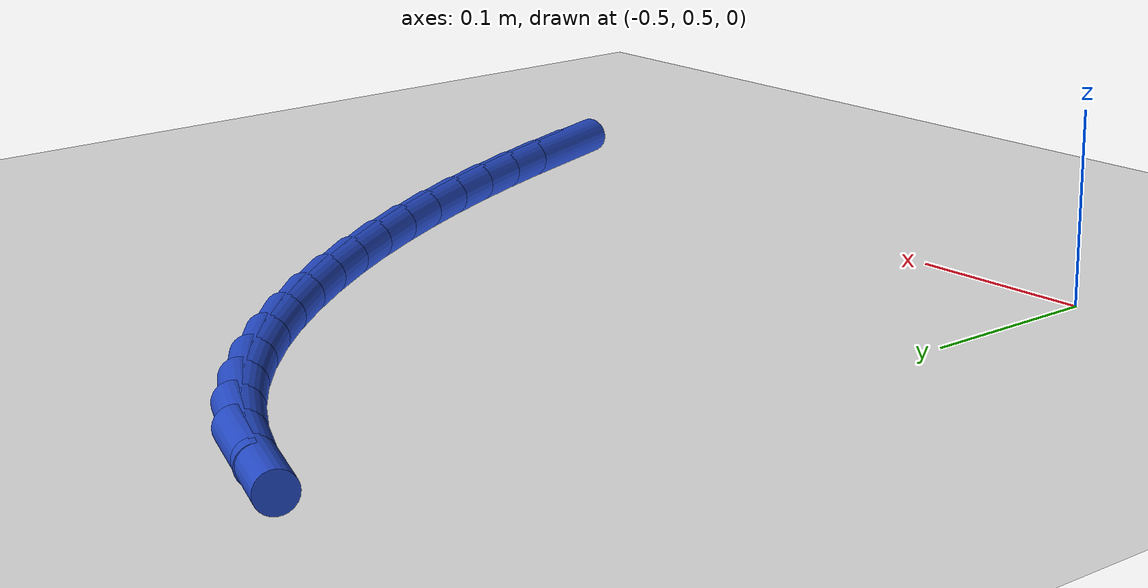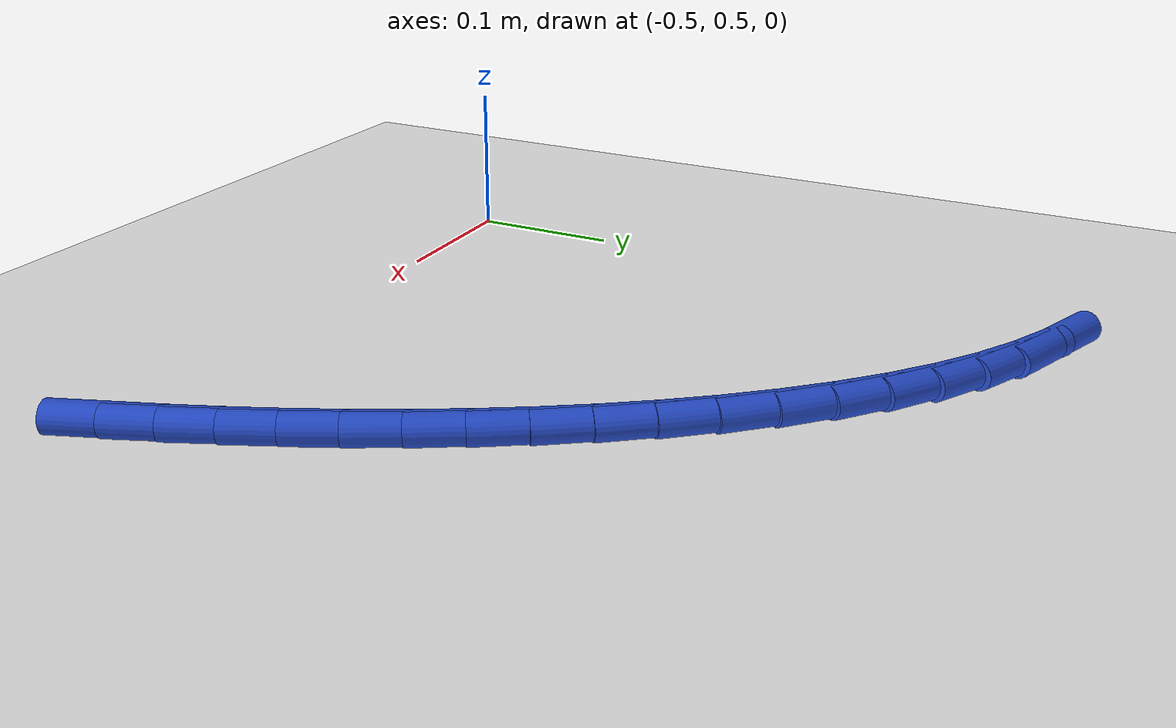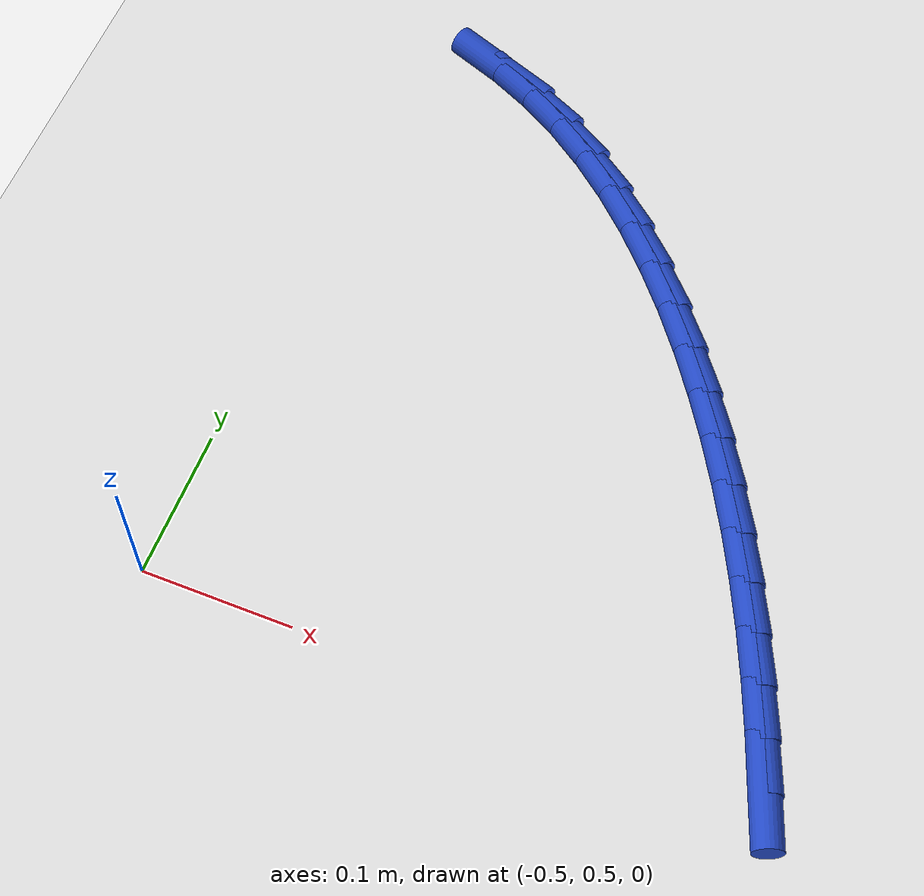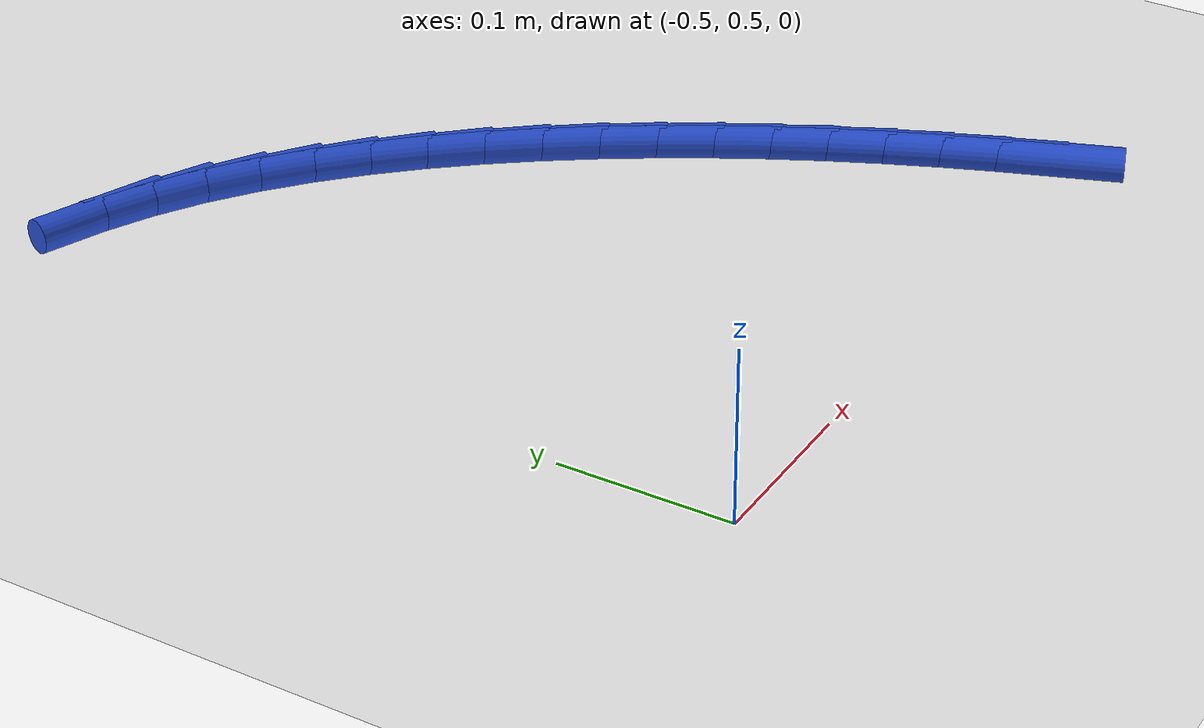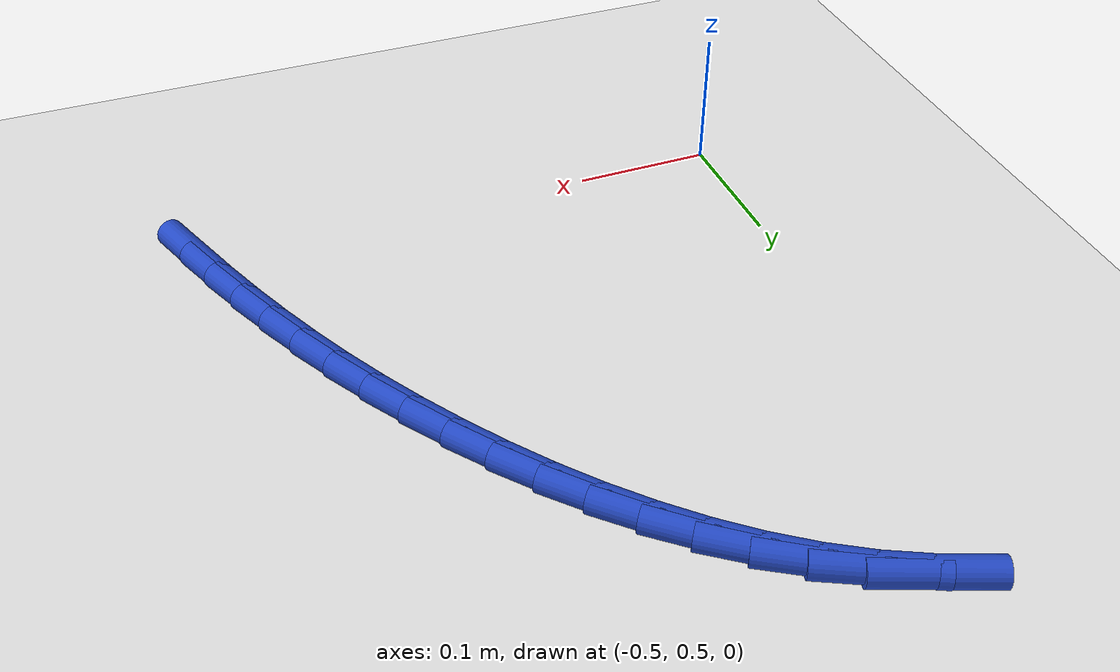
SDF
<sdf version="1.6">
 <world name="default">
  <model name="ground_plane">
   <static>1</static>
   <link name="link">
    <collision name="collision">
     <geometry><plane><normal>0 0 1</normal><size>100 100</size></plane></geometry>
     <surface><friction><ode><mu>100</mu><mu2>50</mu2></ode></friction></surface>
    </collision>
    <visual name="visual">
     <cast_shadows>0</cast_shadows>
     <geometry><plane><normal>0 0 1</normal><size>100 100</size></plane></geometry>
     <material>
      <script><uri>file://media/materials/scripts/gazebo.material</uri><name>Gazebo/WhiteGlow</name></script>
     </material>
    </visual>
   </link>
  </model>
  <model name="line">
   <link name="link_16">
    <pose>-0.1055449806826154 0.5065461900259327 0.01 0 1.57 -1.215942558549698</pose>
    <collision name="collision">
     <geometry><cylinder><radius>0.01</radius><length>0.08</length></cylinder></geometry>
    </collision>
    <visual name="visual">
     <material>
      <script><name>Gazebo/Blue</name><uri>file://media/materials/scripts/gazebo.material</uri></script>
     </material>
     <geometry><cylinder><radius>0.01</radius><length>0.08</length></cylinder></geometry>
    </visual>
   </link>
   <link name="link_17">
    <pose>-0.11680208915802125 0.5369265660163164 0.01 0 1.57 -1.1909960476434311</pose>
    <collision name="collision">
     <geometry><cylinder><radius>0.01</radius><length>0.08</length></cylinder></geometry>
    </collision>
    <visual name="visual">
     <material>
      <script><name>Gazebo/Blue</name><uri>file://media/materials/scripts/gazebo.material</uri></script>
     </material>
     <geometry><cylinder><radius>0.01</radius><length>0.08</length></cylinder></geometry>
    </visual>
   </link>
   <link name="link_18">
    <pose>-0.12882417115725237 0.5670434234212315 0.01 0 1.57 -1.1640641433164582</pose>
    <collision name="collision">
     <geometry><cylinder><radius>0.01</radius><length>0.08</length></cylinder></geometry>
    </collision>
    <visual name="visual">
     <material>
      <script><name>Gazebo/Blue</name><uri>file://media/materials/scripts/gazebo.material</uri></script>
     </material>
     <geometry><cylinder><radius>0.01</radius><length>0.08</length></cylinder></geometry>
    </visual>
   </link>
   <link name="link_19">
    <pose>-0.14167364566664284 0.5968737829783134 0.01 0 1.57 -1.135202374761682</pose>
    <collision name="collision">
     <geometry><cylinder><radius>0.01</radius><length>0.08</length></cylinder></geometry>
    </collision>
    <visual name="visual">
     <material>
      <script><name>Gazebo/Blue</name><uri>file://media/materials/scripts/gazebo.material</uri></script>
     </material>
     <geometry><cylinder><radius>0.01</radius><length>0.08</length></cylinder></geometry>
    </visual>
   </link>
   <link name="link_20">
    <pose>-0.15541293167252676 0.6263946654251986 0.01 0 1.57 -1.1044853704854731</pose>
    <collision name="collision">
     <geometry><cylinder><radius>0.01</radius><length>0.08</length></cylinder></geometry>
    </collision>
    <visual name="visual">
     <material>
      <script><name>Gazebo/Blue</name><uri>file://media/materials/scripts/gazebo.material</uri></script>
     </material>
     <geometry><cylinder><radius>0.01</radius><length>0.08</length></cylinder></geometry>
    </visual>
   </link>
   <link name="link_21">
    <pose>-0.17010444816123835 0.6555830914995234 0.01 0 1.57 -1.0720089564443716</pose>
    <collision name="collision">
     <geometry><cylinder><radius>0.01</radius><length>0.08</length></cylinder></geometry>
    </collision>
    <visual name="visual">
     <material>
      <script><name>Gazebo/Blue</name><uri>file://media/materials/scripts/gazebo.material</uri></script>
     </material>
     <geometry><cylinder><radius>0.01</radius><length>0.08</length></cylinder></geometry>
    </visual>
   </link>
   <link name="link_22">
    <pose>-0.18581061411911173 0.6844160819389238 0.01 0 1.57 -1.0378916635860012</pose>
    <collision name="collision">
     <geometry><cylinder><radius>0.01</radius><length>0.08</length></cylinder></geometry>
    </collision>
    <visual name="visual">
     <material>
      <script><name>Gazebo/Blue</name><uri>file://media/materials/scripts/gazebo.material</uri></script>
     </material>
     <geometry><cylinder><radius>0.01</radius><length>0.08</length></cylinder></geometry>
    </visual>
   </link>
   <link name="link_23">
    <pose>-0.2025938485324811 0.7128706574810362 0.01 0 1.57 -1.00223773739815</pose>
    <collision name="collision">
     <geometry><cylinder><radius>0.01</radius><length>0.08</length></cylinder></geometry>
    </collision>
    <visual name="visual">
     <material>
      <script><name>Gazebo/Blue</name><uri>file://media/materials/scripts/gazebo.material</uri></script>
     </material>
     <geometry><cylinder><radius>0.01</radius><length>0.08</length></cylinder></geometry>
    </visual>
   </link>
   <link name="link_24">
    <pose>-0.22051532847705393 0.7409195649722435 0.01 0 1.57 -0.9640788097628212</pose>
    <collision name="collision">
     <geometry><cylinder><radius>0.01</radius><length>0.08</length></cylinder></geometry>
    </collision>
    <visual name="visual">
     <material>
      <script><name>Gazebo/Blue</name><uri>file://media/materials/scripts/gazebo.material</uri></script>
     </material>
     <geometry><cylinder><radius>0.01</radius><length>0.08</length></cylinder></geometry>
    </visual>
   </link>
   <link name="link_25">
    <pose>-0.2396032382094972 0.7684220103022011 0.01 0 1.57 -0.9218625431205067</pose>
    <collision name="collision">
     <geometry><cylinder><radius>0.01</radius><length>0.08</length></cylinder></geometry>
    </collision>
    <visual name="visual">
     <material>
      <script><name>Gazebo/Blue</name><uri>file://media/materials/scripts/gazebo.material</uri></script>
     </material>
     <geometry><cylinder><radius>0.01</radius><length>0.08</length></cylinder></geometry>
    </visual>
   </link>
   <link name="link_26">
    <pose>-0.25985010328278485 0.7951144840712775 0.01 0 1.57 -0.874849518328969</pose>
    <collision name="collision">
     <geometry><cylinder><radius>0.01</radius><length>0.08</length></cylinder></geometry>
    </collision>
    <visual name="visual">
     <material>
      <script><name>Gazebo/Blue</name><uri>file://media/materials/scripts/gazebo.material</uri></script>
     </material>
     <geometry><cylinder><radius>0.01</radius><length>0.08</length></cylinder></geometry>
    </visual>
   </link>
   <link name="link_27">
    <pose>-0.281246673152969 0.8207273646484641 0.01 0 1.57 -0.8222749461910553</pose>
    <collision name="collision">
     <geometry><cylinder><radius>0.01</radius><length>0.08</length></cylinder></geometry>
    </collision>
    <visual name="visual">
     <material>
      <script><name>Gazebo/Blue</name><uri>file://media/materials/scripts/gazebo.material</uri></script>
     </material>
     <geometry><cylinder><radius>0.01</radius><length>0.08</length></cylinder></geometry>
    </visual>
   </link>
   <link name="link_28">
    <pose>-0.30378369727610166 0.8449910304027523 0.01 0 1.57 -0.7633043507606859</pose>
    <collision name="collision">
     <geometry><cylinder><radius>0.01</radius><length>0.08</length></cylinder></geometry>
    </collision>
    <visual name="visual">
     <material>
      <script><name>Gazebo/Blue</name><uri>file://media/materials/scripts/gazebo.material</uri></script>
     </material>
     <geometry><cylinder><radius>0.01</radius><length>0.08</length></cylinder></geometry>
    </visual>
   </link>
   <link name="link_29">
    <pose>-0.32745192510823484 0.867635859703133 0.01 0 1.57 -0.6970640896180392</pose>
    <collision name="collision">
     <geometry><cylinder><radius>0.01</radius><length>0.08</length></cylinder></geometry>
    </collision>
    <visual name="visual">
     <material>
      <script><name>Gazebo/Blue</name><uri>file://media/materials/scripts/gazebo.material</uri></script>
     </material>
     <geometry><cylinder><radius>0.01</radius><length>0.08</length></cylinder></geometry>
    </visual>
   </link>
   <link name="link_30">
    <pose>-0.3522421061054208 0.8883922309185982 0.01 0 1.57 -0.6227051639275418</pose>
    <collision name="collision">
     <geometry><cylinder><radius>0.01</radius><length>0.08</length></cylinder></geometry>
    </collision>
    <visual name="visual">
     <material>
      <script><name>Gazebo/Blue</name><uri>file://media/materials/scripts/gazebo.material</uri></script>
     </material>
     <geometry><cylinder><radius>0.01</radius><length>0.08</length></cylinder></geometry>
    </visual>
   </link>
   <link name="link_31">
    <pose>-0.3781449897237109 0.906990522418138 0.01 0 1.57 -0.5395147756456349</pose>
    <collision name="collision">
     <geometry><cylinder><radius>0.01</radius><length>0.08</length></cylinder></geometry>
    </collision>
    <visual name="visual">
     <material>
      <script><name>Gazebo/Blue</name><uri>file://media/materials/scripts/gazebo.material</uri></script>
     </material>
     <geometry><cylinder><radius>0.01</radius><length>0.08</length></cylinder></geometry>
    </visual>
   </link>
   <link name="link_32">
    <pose>-0.40515132541915805 0.923161112570745 0.01 0 1.57 -0.44952952814948094</pose>
    <collision name="collision">
     <geometry><cylinder><radius>0.01</radius><length>0.08</length></cylinder></geometry>
    </collision>
    <visual name="visual">
     <material>
      <script><name>Gazebo/Blue</name><uri>file://media/materials/scripts/gazebo.material</uri></script>
     </material>
     <geometry><cylinder><radius>0.01</radius><length>0.08</length></cylinder></geometry>
    </visual>
   </link>
   <link name="link_33">
    <pose>-0.4332394842948635 0.9367129454690262 0.01 0 1.57 -0.3680498462782511</pose>
    <collision name="collision">
     <geometry><cylinder><radius>0.01</radius><length>0.08</length></cylinder></geometry>
    </collision>
    <visual name="visual">
     <material>
      <script><name>Gazebo/Blue</name><uri>file://media/materials/scripts/gazebo.material</uri></script>
     </material>
     <geometry><cylinder><radius>0.01</radius><length>0.08</length></cylinder></geometry>
    </visual>
   </link>
  </model>
 </world>
</sdf>
